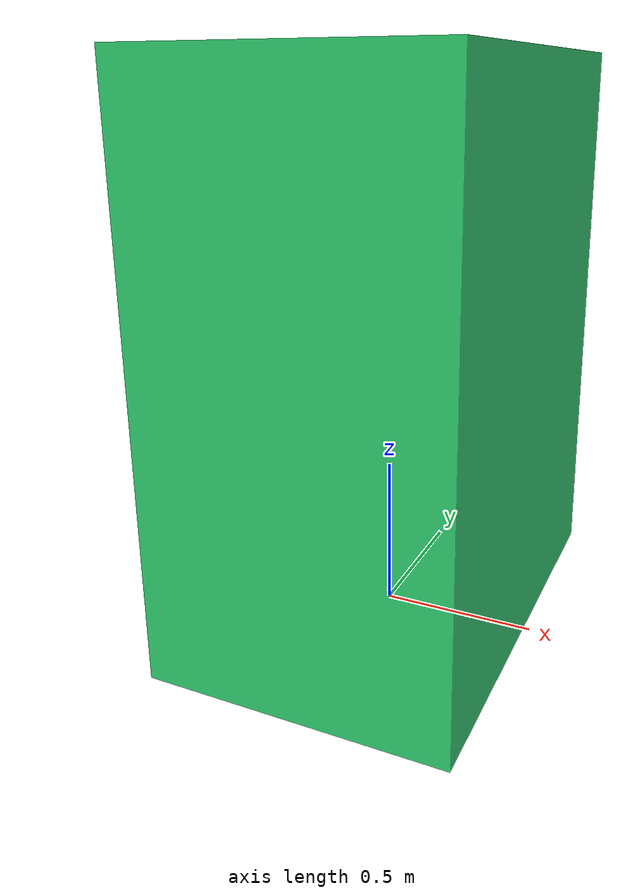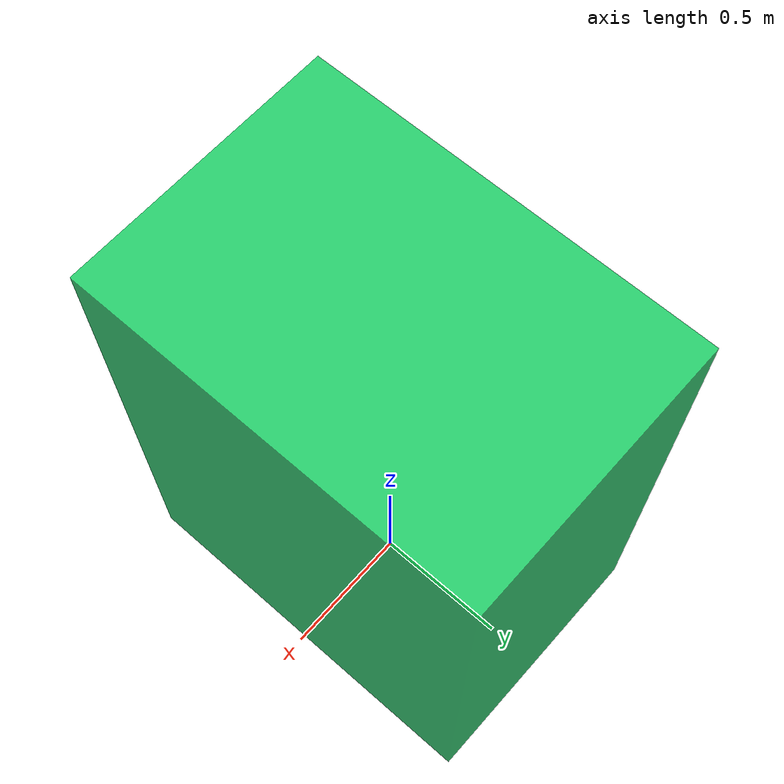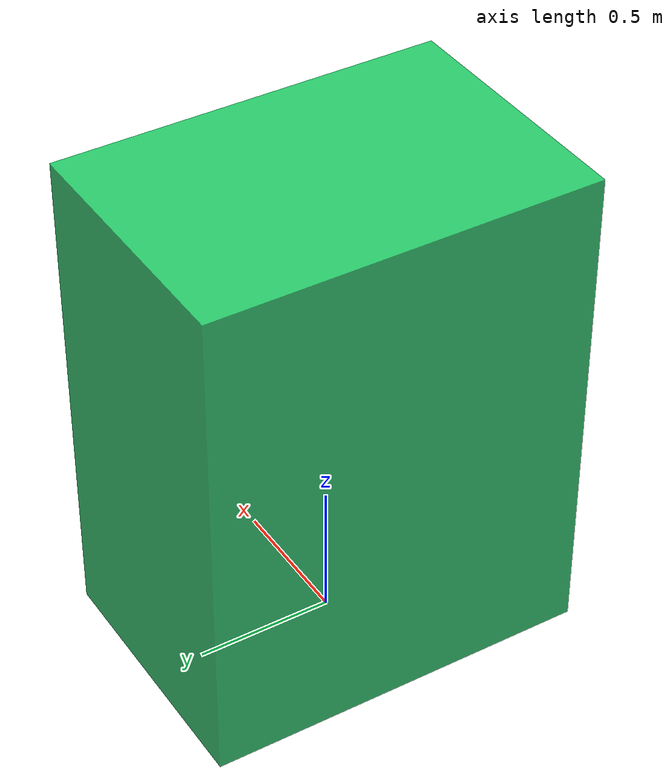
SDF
<?xml version="1.0"?>
<sdf version="1.7">
  <model name="festo_pneumatiksteuerung_bbox">
    <static>true</static>
    <link name="festo_pneumatiksteuerung_bbox_link">
      <pose>0 0 0.91 0 0 0</pose>
      <collision name="festo_pneumatiksteuerung_bbox_collision">
        <geometry>
          <box>
            <size>0.96 1.40 1.82</size>
          </box>
        </geometry>
      </collision>
      <visual name="festo_pneumatiksteuerung_bbox_visual">
        <geometry>
          <box>
            <size>0.96 1.40 1.82</size>
          </box>
        </geometry>
        <material>
          <ambient>0.05 0.78 0.35 0.85</ambient>
          <diffuse>0.05 0.78 0.35 0.85</diffuse>
          <specular>0.10 0.10 0.10 1.0</specular>
        </material>
        <transparency>0.15</transparency>
      </visual>
    </link>
  </model>
</sdf>
